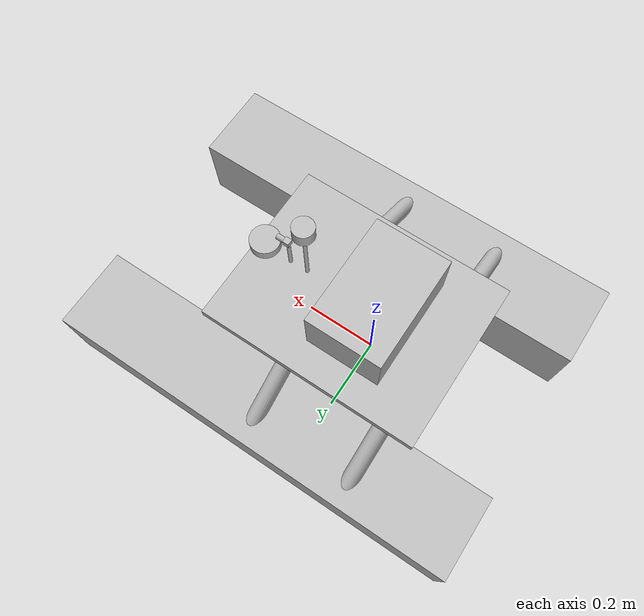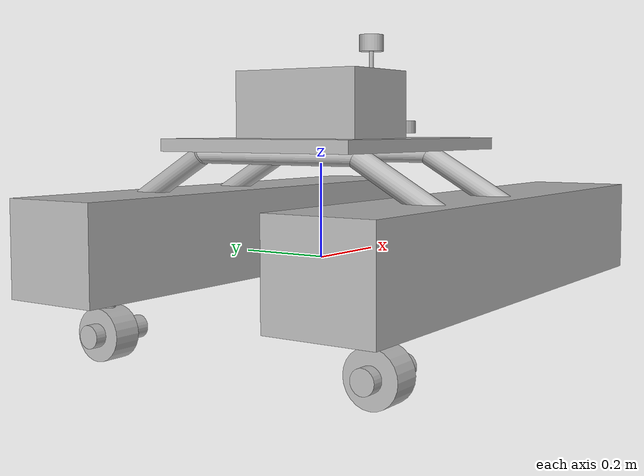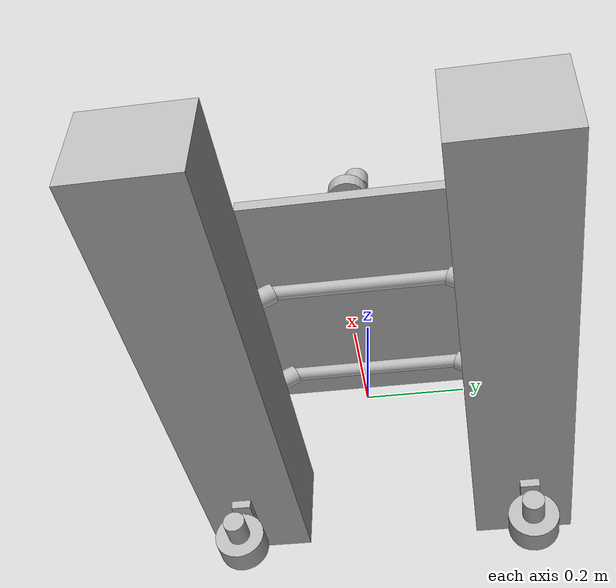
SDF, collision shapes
<sdf version='1.10'>
  <model name='roboboat'>
    <link name='base_link'>
      <inertial>
        <pose>-0.050000000000000003 8.6736173798840355e-19 -0.19166666666666671 0 0 0</pose>
        <mass>12</mass>
        <inertia>
          <ixx>0.7926915000000001</ixx>
          <ixy>-5.2041704279304211e-19</ixy>
          <ixz>0.024999999999999991</ixz>
          <iyy>1.20065</iyy>
          <iyz>-1.994931997373328e-18</iyz>
          <izz>1.9108415000000001</izz>
        </inertia>
      </inertial>
      <collision name='base_link_fixed_joint_lump__Box011_collision'>
        <pose>0.110046 0.31433800000000001 0.035270099999999999 0 0 0</pose>
        <geometry>
          <box>
            <size>1.14985 0.22320300000000001 0.20217199999999999</size>
          </box>
        </geometry>
      </collision>
      <collision name='base_link_fixed_joint_lump__Box012_collision_1'>
        <pose>0.110046 -0.31434000000000001 0.035270099999999999 0 0 0</pose>
        <geometry>
          <box>
            <size>1.14985 0.22320300000000001 0.20217199999999999</size>
          </box>
        </geometry>
      </collision>
      <collision name='base_link_fixed_joint_lump__Box013_collision_2'>
        <pose>0.054911500000000002 0 0.24002899999999999 0 0 0</pose>
        <geometry>
          <box>
            <size>0.59840899999999997 0.45924399999999999 0.026093399999999999</size>
          </box>
        </geometry>
      </collision>
      <collision name='base_link_fixed_joint_lump__Cylinder262_collision_3'>
        <pose>-0.15837799999999999 0.29081400000000002 0.162712 1.0471999999999999 0 0</pose>
        <geometry>
          <cylinder>
            <length>0.222664</length>
            <radius>0.0222591</radius>
          </cylinder>
        </geometry>
      </collision>
      <collision name='base_link_fixed_joint_lump__Cylinder263_collision_4'>
        <pose>-0.15837799999999999 -0.29081400000000002 0.162712 -1.0471999999999999 0 0</pose>
        <geometry>
          <cylinder>
            <length>0.222664</length>
            <radius>0.0222591</radius>
          </cylinder>
        </geometry>
      </collision>
      <collision name='base_link_fixed_joint_lump__Cylinder264_collision_5'>
        <pose>0.12101000000000001 0.29081400000000002 0.162712 1.0471999999999999 0 0</pose>
        <geometry>
          <cylinder>
            <length>0.222664</length>
            <radius>0.0222591</radius>
          </cylinder>
        </geometry>
      </collision>
      <collision name='base_link_fixed_joint_lump__Cylinder265_collision_6'>
        <pose>0.12101000000000001 -0.29081400000000002 0.162712 -1.0471999999999999 0 0</pose>
        <geometry>
          <cylinder>
            <length>0.222664</length>
            <radius>0.0222591</radius>
          </cylinder>
        </geometry>
      </collision>
      <collision name='base_link_fixed_joint_lump__Cylinder266_collision_7'>
        <pose>0.12101000000000001 -0.00065457799999999995 0.21654999999999999 1.5708 0 0</pose>
        <geometry>
          <cylinder>
            <length>0.40904099999999999</length>
            <radius>0.0155011</radius>
          </cylinder>
        </geometry>
      </collision>
      <collision name='base_link_fixed_joint_lump__Cylinder267_collision_8'>
        <pose>-0.15837999999999999 -0.00065457799999999995 0.21654999999999999 1.5708 0 0</pose>
        <geometry>
          <cylinder>
            <length>0.40904099999999999</length>
            <radius>0.0155011</radius>
          </cylinder>
        </geometry>
      </collision>
      <collision name='base_link_fixed_joint_lump__collision_drybox_collision_9'>
        <pose>0 0 0.32000000000000001 0 0 0</pose>
        <geometry>
          <box>
            <size>0.20000000000000001 0.29999999999999999 0.14999999999999999</size>
          </box>
        </geometry>
      </collision>
      <collision name='base_link_fixed_joint_lump__collision_camera_1_collision_10'>
        <pose>0.252 0 0.35499999999999998 0 0 0</pose>
        <geometry>
          <box>
            <size>0.016500000000000001 0.016500000000000001 0.016500000000000001</size>
          </box>
        </geometry>
      </collision>
      <collision name='base_link_fixed_joint_lump__collision_camera_2_collision_11'>
        <pose>0.27000000000000002 0 0.35499999999999998 0 1.5707963267948966 0</pose>
        <geometry>
          <cylinder>
            <length>0.022499999999999999</length>
            <radius>0.0074999999999999997</radius>
          </cylinder>
        </geometry>
      </collision>
      <collision name='base_link_fixed_joint_lump__collision_camera_post_collision_12'>
        <pose>0.25 0 0.29999999999999999 0 0 0</pose>
        <geometry>
          <cylinder>
            <length>0.10000000000000001</length>
            <radius>0.0050000000000000001</radius>
          </cylinder>
        </geometry>
      </collision>
      <collision name='base_link_fixed_joint_lump__collision_gps_collision_13'>
        <pose>0.32500000000000001 0 0.27750000000000002 0 0 0</pose>
        <geometry>
          <cylinder>
            <length>0.028500000000000001</length>
            <radius>0.040000000000000001</radius>
          </cylinder>
        </geometry>
      </collision>
      <collision name='base_link_fixed_joint_lump__Box011d_collision_14'>
        <pose>-0.29999999999999999 0.33000000000000002 -0.049049000000000002 0 0 0</pose>
        <geometry>
          <box>
            <size>0.081045300000000001 0.043051899999999997 0.070925000000000002</size>
          </box>
        </geometry>
      </collision>
      <collision name='base_link_fixed_joint_lump__Cylinder263d_collision_15'>
        <pose>-0.2833463 0.32986701000000002 -0.14999999999999999 1.5708 2.2755331887040928e-23 -1.5708</pose>
        <geometry>
          <cylinder>
            <length>0.14376</length>
            <radius>0.024369200000000001</radius>
          </cylinder>
        </geometry>
      </collision>
      <collision name='base_link_fixed_joint_lump__Cylinder264d_collision_16'>
        <pose>-0.29999999999999999 0.33000000000000002 -0.08719339999999999 0 0 0</pose>
        <geometry>
          <cylinder>
            <length>0.125613</length>
            <radius>0.014703000000000001</radius>
          </cylinder>
        </geometry>
      </collision>
      <collision name='base_link_fixed_joint_lump__collision_lidar_collision_17'>
        <pose>0.20000000000000001 0 0.46750000000000003 0 0 0</pose>
        <geometry>
          <cylinder>
            <length>0.037499999999999999</length>
            <radius>0.0275</radius>
          </cylinder>
        </geometry>
      </collision>
      <collision name='base_link_fixed_joint_lump__collision_lidar_post_collision_18'>
        <pose>0.20000000000000001 0 0.34999999999999998 0 0 0</pose>
        <geometry>
          <cylinder>
            <length>0.22500000000000001</length>
            <radius>0.0050000000000000001</radius>
          </cylinder>
        </geometry>
      </collision>
      <collision name='base_link_fixed_joint_lump__Box011i_collision_19'>
        <pose>-0.29999999999999999 -0.33000000000000002 -0.049049000000000002 0 0 0</pose>
        <geometry>
          <box>
            <size>0.081045300000000001 0.043051899999999997 0.070925000000000002</size>
          </box>
        </geometry>
      </collision>
      <collision name='base_link_fixed_joint_lump__Cylinder263i_collision_20'>
        <pose>-0.2833463 -0.32986701000000002 -0.14999999999999999 1.5708 2.2755331887040928e-23 -1.5708</pose>
        <geometry>
          <cylinder>
            <length>0.14376</length>
            <radius>0.024369200000000001</radius>
          </cylinder>
        </geometry>
      </collision>
      <collision name='base_link_fixed_joint_lump__Cylinder264i_collision_21'>
        <pose>-0.29999999999999999 -0.33000000000000002 -0.08719339999999999 0 0 0</pose>
        <geometry>
          <cylinder>
            <length>0.125613</length>
            <radius>0.014703000000000001</radius>
          </cylinder>
        </geometry>
      </collision>
      <visual name='base_link_fixed_joint_lump__visual_roboboat_visual'>
        <pose>0 0 0 0 0 0</pose>
        <geometry>
          <mesh>
            <scale>1 1 1</scale>
            <uri>model://roboboat/meshes/roboboat.dae</uri>
          </mesh>
        </geometry>
      </visual>
      <visual name='base_link_fixed_joint_lump__visual_drybox_visual_1'>
        <pose>0 0 0.25 0 0 0</pose>
        <geometry>
          <mesh>
            <scale>1 1 1</scale>
            <uri>model://roboboat/sensors/drybox/meshes/drybox.dae</uri>
          </mesh>
        </geometry>
      </visual>
      <visual name='base_link_fixed_joint_lump__visual_camera_visual_2'>
        <pose>0.245 0 0.35499999999999998 0 0 0</pose>
        <geometry>
          <mesh>
            <scale>1 1 1</scale>
            <uri>model://roboboat/sensors/camera/meshes/camera.dae</uri>
          </mesh>
        </geometry>
      </visual>
      <visual name='base_link_fixed_joint_lump__visual_camera_post_visual_3'>
        <pose>0.25 0 0.34999999999999998 0 0 0</pose>
        <geometry>
          <mesh>
            <scale>1 1 1</scale>
            <uri>model://roboboat/sensors/camera_post/meshes/post.dae</uri>
          </mesh>
        </geometry>
      </visual>
      <visual name='base_link_fixed_joint_lump__visual_gps_visual_4'>
        <pose>0.32500000000000001 0 0.25 0 0 0</pose>
        <geometry>
          <mesh>
            <scale>1 1 1</scale>
            <uri>model://roboboat/sensors/gps/meshes/gps.dae</uri>
          </mesh>
        </geometry>
      </visual>
      <visual name='base_link_fixed_joint_lump__visual_left_housing_visual_5'>
        <pose>-0.29999999999999999 0.33000000000000002 -0.14999999999999999 0 0 0</pose>
        <geometry>
          <mesh>
            <scale>1 1 1</scale>
            <uri>model://roboboat/meshes/housing.dae</uri>
          </mesh>
        </geometry>
      </visual>
      <visual name='base_link_fixed_joint_lump__visual_left_mount_visual_6'>
        <pose>-0.29999999999999999 0.33000000000000002 -0.16 0 0 0</pose>
        <geometry>
          <mesh>
            <scale>1 1 1</scale>
            <uri>model://roboboat/meshes/mount.dae</uri>
          </mesh>
        </geometry>
      </visual>
      <visual name='base_link_fixed_joint_lump__visual_lidar_visual_7'>
        <pose>0.20000000000000001 0 0.45000000000000001 0 0 0</pose>
        <geometry>
          <mesh>
            <scale>1 1 1</scale>
            <uri>model://roboboat/sensors/lidar/meshes/lidar.dae</uri>
          </mesh>
        </geometry>
      </visual>
      <visual name='base_link_fixed_joint_lump__visual_lidar_post_visual_8'>
        <pose>0.20000000000000001 0 0.45000000000000001 0 0 0</pose>
        <geometry>
          <mesh>
            <scale>1 1 1</scale>
            <uri>model://roboboat/sensors/lidar_post/meshes/post.dae</uri>
          </mesh>
        </geometry>
      </visual>
      <visual name='base_link_fixed_joint_lump__visual_right_housing_visual_9'>
        <pose>-0.29999999999999999 -0.33000000000000002 -0.14999999999999999 0 0 0</pose>
        <geometry>
          <mesh>
            <scale>1 1 1</scale>
            <uri>model://roboboat/meshes/housing.dae</uri>
          </mesh>
        </geometry>
      </visual>
      <visual name='base_link_fixed_joint_lump__visual_right_mount_visual_10'>
        <pose>-0.29999999999999999 -0.33000000000000002 -0.16 0 0 0</pose>
        <geometry>
          <mesh>
            <scale>1 1 1</scale>
            <uri>model://roboboat/meshes/mount.dae</uri>
          </mesh>
        </geometry>
      </visual>
      <sensor name='sensor_camera' type='camera'>
        <camera name='front_camera'>
          <horizontal_fov>1.3962634</horizontal_fov>
          <image>
            <width>1280</width>
            <height>720</height>
            <format>R8G8B8</format>
          </image>
          <clip>
            <near>0.050000000000000003</near>
            <far>400</far>
          </clip>
        </camera>
        <pose>0.25 0 0.34999999999999998 0 0 0</pose>
      </sensor>
      <sensor name='sensor_gps' type='navsat'>
        <always_on>true</always_on>
        <update_rate>20</update_rate>
        <pose>0.32500000000000001 0 0.25 0 0 0</pose>
      </sensor>
      <sensor name='sensor_imu' type='imu'>
        <always_on>true</always_on>
        <update_rate>100</update_rate>
        <pose>0.32500000000000001 0 0.25 0 0 0</pose>
      </sensor>
      <sensor name='sensor_lidar' type='gpu_ray'>
        <visualize>true</visualize>
        <update_rate>10</update_rate>
        <ray>
          <scan>
            <horizontal>
              <samples>360</samples>
              <resolution>1</resolution>
              <min_angle>-2.3561900000000002</min_angle>
              <max_angle>2.3561900000000002</max_angle>
            </horizontal>
          </scan>
          <range>
            <min>0.10000000000000001</min>
            <max>15</max>
          </range>
        </ray>
        <pose>0.20000000000000001 0 0.45000000000000001 0 0 0</pose>
      </sensor>
    </link>
    <joint name='left_housing_link_to_left_prop_link' type='revolute'>
      <pose relative_to='base_link'>-0.29999999999999999 0.33000000000000002 -0.14999999999999999 0 0 0</pose>
      <parent>base_link</parent>
      <child>left_prop_link</child>
      <axis>
        <xyz>1 0 0</xyz>
        <limit>
          <lower>-3.1400000000000001</lower>
          <upper>3.1400000000000001</upper>
          <effort>10</effort>
          <velocity>10</velocity>
        </limit>
        <dynamics>
          <damping>0.01</damping>
          <friction>0.01</friction>
          <spring_reference>0</spring_reference>
          <spring_stiffness>0</spring_stiffness>
        </dynamics>
      </axis>
    </joint>
    <link name='left_prop_link'>
      <pose relative_to='left_housing_link_to_left_prop_link'>0 0 0 0 0 0</pose>
      <inertial>
        <pose>0 0 0 0 0 0</pose>
        <mass>0.10000000000000001</mass>
        <inertia>
          <ixx>0.00010562500000000001</ixx>
          <ixy>0</ixy>
          <ixz>0</ixz>
          <iyy>0.00010562500000000001</iyy>
          <iyz>0</iyz>
          <izz>0.00015124999999999999</izz>
        </inertia>
      </inertial>
      <collision name='left_prop_link_fixed_joint_lump__Cylinder262d_collision'>
        <pose>0 0 0 1.5708 2.2755331887040928e-23 -1.5708</pose>
        <geometry>
          <cylinder>
            <length>0.060817200000000002</length>
            <radius>0.0553844</radius>
          </cylinder>
        </geometry>
      </collision>
      <visual name='left_prop_link_fixed_joint_lump__visual_left_prop_visual'>
        <pose>0 0 0 0 0 0</pose>
        <geometry>
          <mesh>
            <scale>1 1 1</scale>
            <uri>model://roboboat/meshes/prop.dae</uri>
          </mesh>
        </geometry>
      </visual>
    </link>
    <joint name='right_housing_link_to_right_prop_link' type='revolute'>
      <pose relative_to='base_link'>-0.29999999999999999 -0.33000000000000002 -0.14999999999999999 0 0 0</pose>
      <parent>base_link</parent>
      <child>right_prop_link</child>
      <axis>
        <xyz>1 0 0</xyz>
        <limit>
          <lower>-3.1400000000000001</lower>
          <upper>3.1400000000000001</upper>
          <effort>10</effort>
          <velocity>10</velocity>
        </limit>
        <dynamics>
          <damping>0.01</damping>
          <friction>0.01</friction>
          <spring_reference>0</spring_reference>
          <spring_stiffness>0</spring_stiffness>
        </dynamics>
      </axis>
    </joint>
    <link name='right_prop_link'>
      <pose relative_to='right_housing_link_to_right_prop_link'>0 0 0 0 0 0</pose>
      <inertial>
        <pose>0 0 0 0 0 0</pose>
        <mass>0.10000000000000001</mass>
        <inertia>
          <ixx>0.00010562500000000001</ixx>
          <ixy>0</ixy>
          <ixz>0</ixz>
          <iyy>0.00010562500000000001</iyy>
          <iyz>0</iyz>
          <izz>0.00015124999999999999</izz>
        </inertia>
      </inertial>
      <collision name='right_prop_link_fixed_joint_lump__Cylinder262i_collision'>
        <pose>0 0 0 1.5708 2.2755331887040928e-23 -1.5708</pose>
        <geometry>
          <cylinder>
            <length>0.060817200000000002</length>
            <radius>0.0553844</radius>
          </cylinder>
        </geometry>
      </collision>
      <visual name='right_prop_link_fixed_joint_lump__visual_right_prop_visual'>
        <pose>0 0 0 0 0 0</pose>
        <geometry>
          <mesh>
            <scale>1 1 1</scale>
            <uri>model://roboboat/meshes/prop.dae</uri>
          </mesh>
        </geometry>
      </visual>
    </link>
    <plugin name='gz::sim::systems::Thruster' filename='gz-sim-thruster-system'>
      <joint_name>left_housing_link_to_left_prop_link</joint_name>
      <thrust_coefficient>0.1</thrust_coefficient>
      <fluid_density>1025</fluid_density>
      <propeller_diameter>0.1</propeller_diameter>
      <velocity_control>false</velocity_control>
    </plugin>
    <plugin name='gz::sim::systems::Thruster' filename='gz-sim-thruster-system'>
      <joint_name>right_housing_link_to_right_prop_link</joint_name>
      <thrust_coefficient>0.1</thrust_coefficient>
      <fluid_density>1025</fluid_density>
      <propeller_diameter>0.1</propeller_diameter>
      <velocity_control>false</velocity_control>
    </plugin>
    <plugin name='gz::sim::systems::OdometryPublisher' filename='gz-sim-odometry-publisher-system'>
      <odom_frame>odom</odom_frame>
      <robot_base_frame>base_link</robot_base_frame>
      <dimensions>3</dimensions>
      <odom_publish_frequency>50</odom_publish_frequency>
      <odom_topic>/model/roboboat/odometry</odom_topic>
    </plugin>
    <plugin name='vrx::Surface' filename='libSurface.so'>
      <link_name>base_link</link_name>
      <hull_length>1.15</hull_length>
      <hull_radius>0.12</hull_radius>
      <fluid_level>0.075</fluid_level>
      <points>
        <point>0.68 0.314338 0.0352701</point>
        <point>-0.465 0.314338 0.0352701</point>
      </points>
      <wavefield>
        <topic>/vrx/wavefield/parameters</topic>
      </wavefield>
    </plugin>
    <plugin name='vrx::Surface' filename='libSurface.so'>
      <link_name>base_link</link_name>
      <hull_length>1.15</hull_length>
      <hull_radius>0.12</hull_radius>
      <fluid_level>0.075</fluid_level>
      <points>
        <point>0.68 -0.314338 0.0352701</point>
        <point>-0.465 -0.314338 0.0352701</point>
      </points>
      <wavefield>
        <topic>/vrx/wavefield/parameters</topic>
      </wavefield>
    </plugin>
    <plugin name='vrx::SimpleHydrodynamics' filename='libSimpleHydrodynamics.so'>
      <link_name>base_link</link_name>
      <xDotU>0.0</xDotU>
      <yDotV>0.0</yDotV>
      <nDotR>0.0</nDotR>
      <xU>4.0</xU>
      <xUU>6.0</xUU>
      <yV>4.0</yV>
      <yVV>4.0</yVV>
      <zW>20.0</zW>
      <kP>12.0</kP>
      <kPP>24.0</kPP>
      <mQ>36.0</mQ>
      <mQQ>35.0</mQQ>
      <nR>32.0</nR>
      <nRR>32.0</nRR>
    </plugin>
    <frame name='base_link_to_camera_link' attached_to='base_link'>
      <pose>0.25 0 0.34999999999999998 0 0 0</pose>
    </frame>
    <frame name='camera_link' attached_to='base_link_to_camera_link'>
      <pose>0 0 0 0 0 0</pose>
    </frame>
    <frame name='base_link_to_gps_link' attached_to='base_link'>
      <pose>0.32500000000000001 0 0.25 0 0 0</pose>
    </frame>
    <frame name='gps_link' attached_to='base_link_to_gps_link'>
      <pose>0 0 0 0 0 0</pose>
    </frame>
    <frame name='base_link_to_imu_link' attached_to='base_link'>
      <pose>0.32500000000000001 0 0.25 0 0 0</pose>
    </frame>
    <frame name='imu_link' attached_to='base_link_to_imu_link'>
      <pose>0 0 0 0 0 0</pose>
    </frame>
    <frame name='base_link_to_left_housing_link' attached_to='base_link'>
      <pose>-0.29999999999999999 0.33000000000000002 -0.14999999999999999 0 0 0</pose>
    </frame>
    <frame name='left_housing_link' attached_to='base_link_to_left_housing_link'>
      <pose>0 0 0 0 0 0</pose>
    </frame>
    <frame name='base_link_to_lidar_link' attached_to='base_link'>
      <pose>0.20000000000000001 0 0.45000000000000001 0 0 0</pose>
    </frame>
    <frame name='lidar_link' attached_to='base_link_to_lidar_link'>
      <pose>0 0 0 0 0 0</pose>
    </frame>
    <frame name='base_link_to_right_housing_link' attached_to='base_link'>
      <pose>-0.29999999999999999 -0.33000000000000002 -0.14999999999999999 0 0 0</pose>
    </frame>
    <frame name='right_housing_link' attached_to='base_link_to_right_housing_link'>
      <pose>0 0 0 0 0 0</pose>
    </frame>
  </model>
</sdf>
